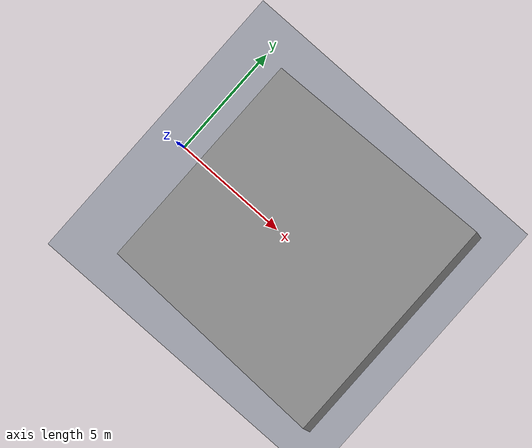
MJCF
<mujoco model="slope_6">
  <!-- Terrain Type: slope, Level: 6, Slope angle (degrees): 20.9069 -->
  <statistic center="0 0 0.1" extent="0.8" />
  <visual>
    <headlight diffuse="0.6 0.6 0.6" ambient="0.3 0.3 0.3" specular="0 0 0" />
    <rgba haze="0.15 0.25 0.35 1" />
    <global azimuth="-130" elevation="-20" />
  </visual>
  <asset>
    <texture type="skybox" builtin="gradient" rgb1="0.3 0.5 0.7" rgb2="0 0 0" width="512" height="3072" />
    <texture type="2d" name="groundplane" builtin="checker" mark="edge" rgb1="0.2 0.3 0.4" rgb2="0.1 0.2 0.3" markrgb="0.8 0.8 0.8" width="300" height="300" />
    <material name="groundplane" texture="groundplane" texuniform="true" texrepeat="5 5" reflectance="0.0" />
  </asset>
  <worldbody>
    <light pos="0 0 1.5" dir="0 0 -1" directional="true" />
    <geom name="floor" size="0 0 0.05" type="plane" material="groundplane" />
    <geom pos="5.9784248990036355 0.0 1.4429191125559275" type="box" size="5.352391988634614 5.0 0.5" quat="0.9834027086824972 0.0 -0.18143624928863425 0.0" />
  </worldbody>
</mujoco>
